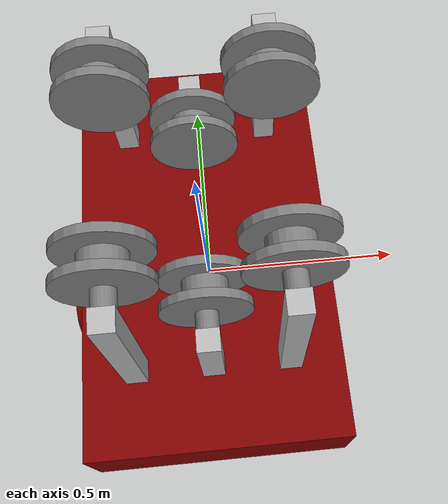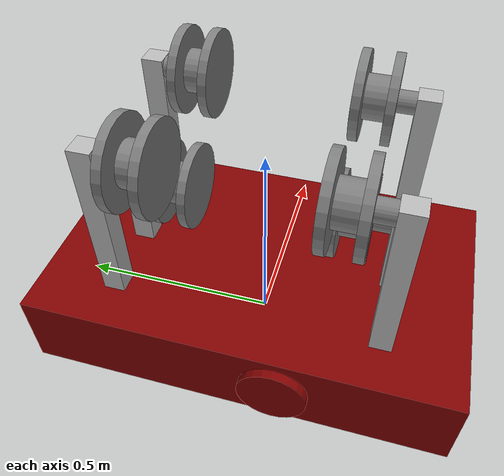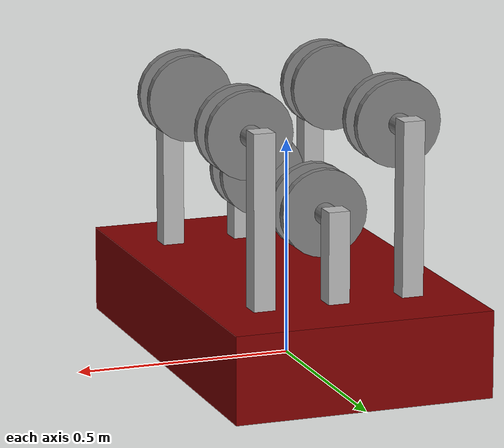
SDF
<?xml version='1.0'?>

<sdf version='1.6'>
	<model name='Carrito'>
		<pose>0 0 0.1 0 0 0</pose>
		<link name='Chassis'>
			<gravity>true</gravity>
			<visual name = "visual_chasis">
				<geometry>
					<box>
						<size>0.6 1 0.2</size>
					</box>
				</geometry>
				<material>
  <ambient>0.3 0 0 1</ambient>
  <emissive>0 0 0 1</emissive>
  <diffuse>0.5 0 0 1</diffuse>
  <specular>1 1 1 1</specular>
</material>

			</visual>
			<collision name = "collision_chasis">
				<geometry>
					<box>
						<size>0.6 1 0.2</size>
					</box>
				</geometry>
			</collision>
			<inertial>
		      	<mass>30</mass>
		      	<inertia>
		        	<ixx>0.166667</ixx>
		        	<iyy>0.166667</iyy>
		        	<izz>0.166667</izz>
		      	</inertia>
		    </inertial>
		</link>

		<link name="Enganche_ur3">
			<pose>-0.31 -0.1 0 0 1.5707963267948966 0</pose>
			<visual name="visual_enganche_ur3">
				<geometry>
					<cylinder>
						<radius>0.08</radius>
						<length>0.02</length>
					</cylinder>
				</geometry>
				<material>
  <ambient>0.3 0 0 1</ambient>
  <emissive>0 0 0 1</emissive>
  <diffuse>0.5 0 0 1</diffuse>
  <specular>1 1 1 1</specular>
</material>

			</visual>
			<collision name="collision_enganche_ur3">
				<geometry>
					<cylinder>
						<radius>0.08</radius>
						<length>0.02</length>
					</cylinder>
				</geometry>
			</collision>
		</link>

		<joint name="joint_enganche" type="fixed">
			<parent>Chassis</parent>
			<child>Enganche_ur3</child>
		</joint>

		<link name='eje_vertical_0'>
			<pose>-0.17500000000000002 0.31000000000000005 0.30000000000000004 0 0 0</pose>
			<visual name = "visual_eje_vertical_0">
				<geometry>
					<box>
						<size>0.05 0.05 0.4</size>
					</box>
				</geometry>
			</visual>
			<collision name = "collision_eje_vertical_0">
				<geometry>
					<box>
						<size>0.05 0.05 0.4</size>
					</box>
				</geometry>
			</collision>
		</link>

		<joint name="joint_vert_0" type="fixed">
			<parent>Chassis</parent>
			<child>eje_vertical_0</child>
		</joint>

		<include>
      		<uri>model://Rueda</uri>
            <name>rueda_0</name>
			<pose>-0.17500000000000002 0.28500000000000003 0.475 -3.141592653589793 0 0</pose>
    	</include>

    	<joint name="joint_rueda_0" type="revolute">
    		<pose>0 0 0 0 0 0</pose>
			<parent>eje_vertical_0</parent>
			<child>rueda_0::rueda</child>
			<axis>
	        	<use_parent_model_frame>true</use_parent_model_frame>
		        <xyz>0 1 0</xyz>
		      	<dynamics>
		      		<friction>5</friction>
		      	</dynamics>
	      	</axis>
		</joint>

		<link name='eje_vertical_1'>
			<pose>-0.17500000000000002 -0.31000000000000005 0.30000000000000004 0 0 0</pose>
			<visual name = "visual_eje_vertical_0">
				<geometry>
					<box>
						<size>0.05 0.05 0.4</size>
					</box>
				</geometry>
			</visual>
			<collision name = "collision_eje_vertical_0">
				<geometry>
					<box>
						<size>0.05 0.05 0.4</size>
					</box>
				</geometry>
			</collision>
		</link>

		<joint name="joint_vert_1" type="fixed">
			<parent>Chassis</parent>
			<child>eje_vertical_1</child>
		</joint>

		<include>
      		<uri>model://Rueda</uri>
            <name>rueda_1</name>
			<pose>-0.17500000000000002 -0.28500000000000003 0.475 0.0 0 0</pose>
    	</include>

    	<joint name="joint_rueda_1" type="revolute">
    		<pose>0 0 0 0 0 0</pose>
			<parent>eje_vertical_1</parent>
			<child>rueda_1::rueda</child>
			<axis>
	        	<use_parent_model_frame>true</use_parent_model_frame>
		        <xyz>0 1 0</xyz>
		      	<dynamics>
		      		<friction>5</friction>
		      	</dynamics>
	      	</axis>
		</joint>

		<link name='eje_vertical_2'>
			<pose>0.0 0.31000000000000005 0.20500000000000002 0 0 0</pose>
			<visual name = "visual_eje_vertical_1">
				<geometry>
					<box>
						<size>0.05 0.05 0.21</size>
					</box>
				</geometry>
			</visual>
			<collision name = "collision_eje_vertical_1">
				<geometry>
					<box>
						<size>0.05 0.05 0.21</size>
					</box>
				</geometry>
			</collision>
		</link>

		<joint name="joint_vert_2" type="fixed">
			<parent>Chassis</parent>
			<child>eje_vertical_2</child>
		</joint>

		<include>
      		<uri>model://Rueda</uri>
            <name>rueda_2</name>
			<pose>0.0 0.28500000000000003 0.285 -3.141592653589793 0 0</pose>
    	</include>

    	<joint name="joint_rueda_2" type="revolute">
    		<pose>0 0 0 0 0 0</pose>
			<parent>eje_vertical_2</parent>
			<child>rueda_2::rueda</child>
			<axis>
	        	<use_parent_model_frame>true</use_parent_model_frame>
		        <xyz>0 1 0</xyz>
		      	<dynamics>
		      		<friction>5</friction>
		      	</dynamics>
	      	</axis>
		</joint>

		<link name='eje_vertical_3'>
			<pose>0.0 -0.31000000000000005 0.20500000000000002 0 0 0</pose>
			<visual name = "visual_eje_vertical_1">
				<geometry>
					<box>
						<size>0.05 0.05 0.21</size>
					</box>
				</geometry>
			</visual>
			<collision name = "collision_eje_vertical_1">
				<geometry>
					<box>
						<size>0.05 0.05 0.21</size>
					</box>
				</geometry>
			</collision>
		</link>

		<joint name="joint_vert_3" type="fixed">
			<parent>Chassis</parent>
			<child>eje_vertical_3</child>
		</joint>

		<include>
      		<uri>model://Rueda</uri>
            <name>rueda_3</name>
			<pose>0.0 -0.28500000000000003 0.285 0.0 0 0</pose>
    	</include>

    	<joint name="joint_rueda_3" type="revolute">
    		<pose>0 0 0 0 0 0</pose>
			<parent>eje_vertical_3</parent>
			<child>rueda_3::rueda</child>
			<axis>
	        	<use_parent_model_frame>true</use_parent_model_frame>
		        <xyz>0 1 0</xyz>
		      	<dynamics>
		      		<friction>5</friction>
		      	</dynamics>
	      	</axis>
		</joint>

		<link name='eje_vertical_4'>
			<pose>0.17500000000000002 0.31000000000000005 0.30000000000000004 0 0 0</pose>
			<visual name = "visual_eje_vertical_2">
				<geometry>
					<box>
						<size>0.05 0.05 0.4</size>
					</box>
				</geometry>
			</visual>
			<collision name = "collision_eje_vertical_2">
				<geometry>
					<box>
						<size>0.05 0.05 0.4</size>
					</box>
				</geometry>
			</collision>
		</link>

		<joint name="joint_vert_4" type="fixed">
			<parent>Chassis</parent>
			<child>eje_vertical_4</child>
		</joint>

		<include>
      		<uri>model://Rueda</uri>
            <name>rueda_4</name>
			<pose>0.17500000000000002 0.28500000000000003 0.475 -3.141592653589793 0 0</pose>
    	</include>

    	<joint name="joint_rueda_4" type="revolute">
    		<pose>0 0 0 0 0 0</pose>
			<parent>eje_vertical_4</parent>
			<child>rueda_4::rueda</child>
			<axis>
	        	<use_parent_model_frame>true</use_parent_model_frame>
		        <xyz>0 1 0</xyz>
		      	<dynamics>
		      		<friction>5</friction>
		      	</dynamics>
	      	</axis>
		</joint>

		<link name='eje_vertical_5'>
			<pose>0.17500000000000002 -0.31000000000000005 0.30000000000000004 0 0 0</pose>
			<visual name = "visual_eje_vertical_2">
				<geometry>
					<box>
						<size>0.05 0.05 0.4</size>
					</box>
				</geometry>
			</visual>
			<collision name = "collision_eje_vertical_2">
				<geometry>
					<box>
						<size>0.05 0.05 0.4</size>
					</box>
				</geometry>
			</collision>
		</link>

		<joint name="joint_vert_5" type="fixed">
			<parent>Chassis</parent>
			<child>eje_vertical_5</child>
		</joint>

		<include>
      		<uri>model://Rueda</uri>
            <name>rueda_5</name>
			<pose>0.17500000000000002 -0.28500000000000003 0.475 0.0 0 0</pose>
    	</include>

    	<joint name="joint_rueda_5" type="revolute">
    		<pose>0 0 0 0 0 0</pose>
			<parent>eje_vertical_5</parent>
			<child>rueda_5::rueda</child>
			<axis>
	        	<use_parent_model_frame>true</use_parent_model_frame>
		        <xyz>0 1 0</xyz>
		      	<dynamics>
		      		<friction>5</friction>
		      	</dynamics>
	      	</axis>
		</joint>

  	</model>
</sdf>

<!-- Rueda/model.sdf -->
<sdf version='1.6'>
	<model name='rueda'>
		<link name='rueda'>
			<collision name = "palo_collision" >
				<pose>0 0.02 0 1.5707963267948966 0 0</pose>
				<geometry>
					<cylinder>
						<radius>0.025</radius>
						<length>0.04</length>
					</cylinder>
				</geometry>
			</collision>
			<visual name = "palo_visual" >
				<pose>0 0.02 0 1.5707963267948966 0 0</pose>
				<geometry>
					<cylinder>
						<radius>0.025</radius>
						<length>0.04</length>
					</cylinder>
				</geometry>
				<material>
  					<ambient>0.5 0.5 0.5 1</ambient>
  					<emissive>0 0 0 1</emissive>
  					<diffuse>0.5 0.5 0.5 1</diffuse>
  					<specular>1 1 1 1</specular>
				</material>
			</visual>

			<collision name = "ext_1_collision" >
				<pose>0 0.05 0 1.5707963267948966 0 0</pose>
				<geometry>
					<cylinder>
						<radius>0.1</radius>
						<length>0.02</length>
					</cylinder>
				</geometry>
			</collision>
			<visual name = "ext_1_visual" >
				<pose>0 0.05 0 1.5707963267948966 0 0</pose>
				<geometry>
					<cylinder>
						<radius>0.1</radius>
						<length>0.02</length>
					</cylinder>
				</geometry>
				<material>
  					<ambient>0.5 0.5 0.5 1</ambient>
  					<emissive>0 0 0 1</emissive>
  					<diffuse>0.5 0.5 0.5 1</diffuse>
  					<specular>1 1 1 1</specular>
				</material>
			</visual>

			<collision name = "int_collision" >
				<pose>0 0.08499999999999999 0 1.5707963267948966 0 0</pose>
				<geometry>
					<cylinder>
						<radius>0.05</radius>
						<length>0.05</length>
					</cylinder>
				</geometry>
			</collision>
			<visual name = "int_visual" >
				<pose>0 0.08499999999999999 0 1.5707963267948966 0 0</pose>
				<geometry>
					<cylinder>
						<radius>0.05</radius>
						<length>0.05</length>
					</cylinder>
				</geometry>
				<material>
  					<ambient>0.5 0.5 0.5 1</ambient>
  					<emissive>0 0 0 1</emissive>
  					<diffuse>0.5 0.5 0.5 1</diffuse>
  					<specular>1 1 1 1</specular>
				</material>
			</visual>

			<collision name = "ext_2_collision" >
				<pose>0 0.12 0 1.5707963267948966 0 0</pose>
				<geometry>
					<cylinder>
						<radius>0.1</radius>
						<length>0.02</length>
					</cylinder>
				</geometry>
			</collision>
			<visual name = "ext_2_visual" >
				<pose>0 0.12 0 1.5707963267948966 0 0</pose>
				<geometry>
					<cylinder>
						<radius>0.1</radius>
						<length>0.02</length>
					</cylinder>
				</geometry>
				<material>
  					<ambient>0.5 0.5 0.5 1</ambient>
  					<emissive>0 0 0 1</emissive>
  					<diffuse>0.5 0.5 0.5 1</diffuse>
  					<specular>1 1 1 1</specular>
				</material>
			</visual>
		</link>
  	</model>
</sdf>
